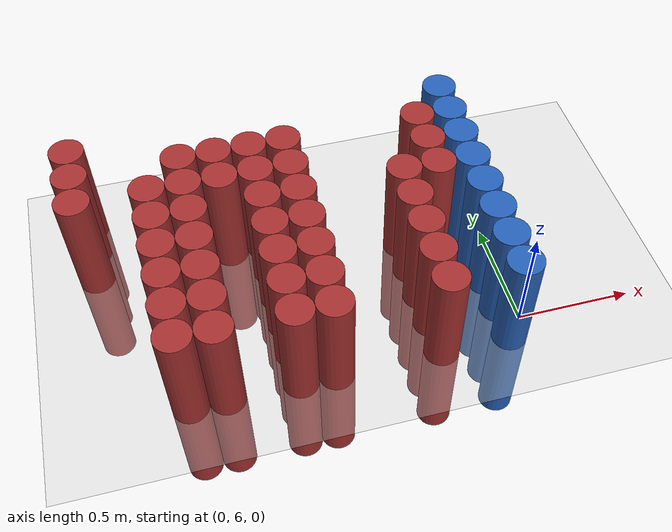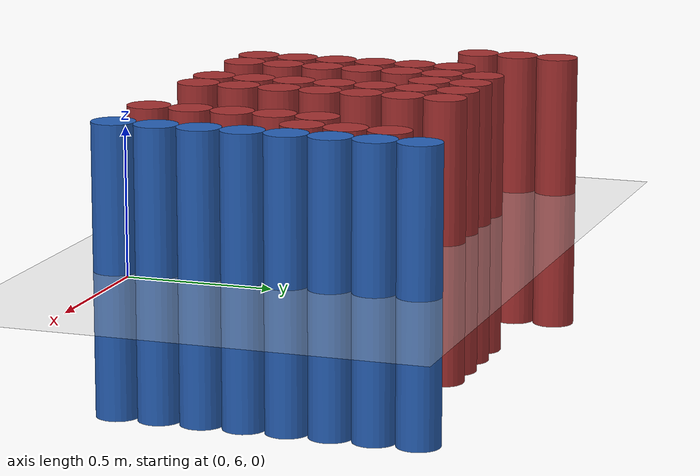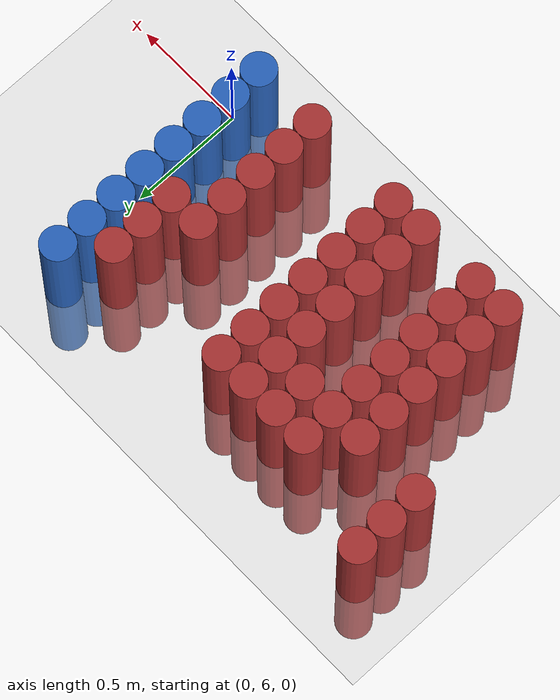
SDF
<sdf version="1.6">
 <world name="default">
  <model name="ground_plane">
   <static>1</static>
   <link name="link">
    <collision name="collision">
     <geometry><plane><normal>0 0 1</normal><size>100 100</size></plane></geometry>
     <surface><friction><ode><mu>100</mu><mu2>50</mu2></ode></friction></surface>
    </collision>
    <visual name="visual">
     <cast_shadows>0</cast_shadows>
     <geometry><plane><normal>0 0 1</normal><size>100 100</size></plane></geometry>
     <material>
      <script><uri>file://media/materials/scripts/gazebo.material</uri><name>Gazebo/Grey</name></script>
     </material>
    </visual>
   </link>
  </model>
  <model name="unit_cylinder_218">
   <static>1</static>
   <pose>-1.725000 6.675000 0.000000 0.000000 0.000000 0.000000</pose>
   <link name="link">
    <inertial>
     <mass>1</mass>
     <inertia><ixx>0.145833</ixx><ixy>0</ixy><ixz>0</ixz><iyy>0.145833</iyy><iyz>0</iyz><izz>0.125</izz></inertia>
    </inertial>
    <collision name="collision">
     <geometry><cylinder><radius>0.075000</radius><length>1</length></cylinder></geometry>
    </collision>
    <visual name="visual">
     <geometry><cylinder><radius>0.075000</radius><length>1</length></cylinder></geometry>
     <material>
      <ambient>0.648000 0.192000 0.192000 1</ambient>
      <diffuse>0.648000 0.192000 0.192000 1</diffuse>
     </material>
     <material>
      <script><name>Gazebo/Grey</name><uri>file://media/materials/scripts/gazebo.material</uri></script>
     </material>
    </visual>
   </link>
  </model>
  <model name="unit_cylinder_219">
   <static>1</static>
   <pose>-1.725000 6.825000 0.000000 0.000000 0.000000 0.000000</pose>
   <link name="link">
    <inertial>
     <mass>1</mass>
     <inertia><ixx>0.145833</ixx><ixy>0</ixy><ixz>0</ixz><iyy>0.145833</iyy><iyz>0</iyz><izz>0.125</izz></inertia>
    </inertial>
    <collision name="collision">
     <geometry><cylinder><radius>0.075000</radius><length>1</length></cylinder></geometry>
    </collision>
    <visual name="visual">
     <geometry><cylinder><radius>0.075000</radius><length>1</length></cylinder></geometry>
     <material>
      <ambient>0.648000 0.192000 0.192000 1</ambient>
      <diffuse>0.648000 0.192000 0.192000 1</diffuse>
     </material>
     <material>
      <script><name>Gazebo/Grey</name><uri>file://media/materials/scripts/gazebo.material</uri></script>
     </material>
    </visual>
   </link>
  </model>
  <model name="unit_cylinder_220">
   <static>1</static>
   <pose>-1.725000 6.975000 0.000000 0.000000 0.000000 0.000000</pose>
   <link name="link">
    <inertial>
     <mass>1</mass>
     <inertia><ixx>0.145833</ixx><ixy>0</ixy><ixz>0</ixz><iyy>0.145833</iyy><iyz>0</iyz><izz>0.125</izz></inertia>
    </inertial>
    <collision name="collision">
     <geometry><cylinder><radius>0.075000</radius><length>1</length></cylinder></geometry>
    </collision>
    <visual name="visual">
     <geometry><cylinder><radius>0.075000</radius><length>1</length></cylinder></geometry>
     <material>
      <ambient>0.648000 0.192000 0.192000 1</ambient>
      <diffuse>0.648000 0.192000 0.192000 1</diffuse>
     </material>
     <material>
      <script><name>Gazebo/Grey</name><uri>file://media/materials/scripts/gazebo.material</uri></script>
     </material>
    </visual>
   </link>
  </model>
  <model name="unit_cylinder_236">
   <static>1</static>
   <pose>-1.425000 5.925000 0.000000 0.000000 0.000000 0.000000</pose>
   <link name="link">
    <inertial>
     <mass>1</mass>
     <inertia><ixx>0.145833</ixx><ixy>0</ixy><ixz>0</ixz><iyy>0.145833</iyy><iyz>0</iyz><izz>0.125</izz></inertia>
    </inertial>
    <collision name="collision">
     <geometry><cylinder><radius>0.075000</radius><length>1</length></cylinder></geometry>
    </collision>
    <visual name="visual">
     <geometry><cylinder><radius>0.075000</radius><length>1</length></cylinder></geometry>
     <material>
      <ambient>0.648000 0.192000 0.192000 1</ambient>
      <diffuse>0.648000 0.192000 0.192000 1</diffuse>
     </material>
     <material>
      <script><name>Gazebo/Grey</name><uri>file://media/materials/scripts/gazebo.material</uri></script>
     </material>
    </visual>
   </link>
  </model>
  <model name="unit_cylinder_237">
   <static>1</static>
   <pose>-1.425000 6.075000 0.000000 0.000000 0.000000 0.000000</pose>
   <link name="link">
    <inertial>
     <mass>1</mass>
     <inertia><ixx>0.145833</ixx><ixy>0</ixy><ixz>0</ixz><iyy>0.145833</iyy><iyz>0</iyz><izz>0.125</izz></inertia>
    </inertial>
    <collision name="collision">
     <geometry><cylinder><radius>0.075000</radius><length>1</length></cylinder></geometry>
    </collision>
    <visual name="visual">
     <geometry><cylinder><radius>0.075000</radius><length>1</length></cylinder></geometry>
     <material>
      <ambient>0.648000 0.192000 0.192000 1</ambient>
      <diffuse>0.648000 0.192000 0.192000 1</diffuse>
     </material>
     <material>
      <script><name>Gazebo/Grey</name><uri>file://media/materials/scripts/gazebo.material</uri></script>
     </material>
    </visual>
   </link>
  </model>
  <model name="unit_cylinder_238">
   <static>1</static>
   <pose>-1.425000 6.225000 0.000000 0.000000 0.000000 0.000000</pose>
   <link name="link">
    <inertial>
     <mass>1</mass>
     <inertia><ixx>0.145833</ixx><ixy>0</ixy><ixz>0</ixz><iyy>0.145833</iyy><iyz>0</iyz><izz>0.125</izz></inertia>
    </inertial>
    <collision name="collision">
     <geometry><cylinder><radius>0.075000</radius><length>1</length></cylinder></geometry>
    </collision>
    <visual name="visual">
     <geometry><cylinder><radius>0.075000</radius><length>1</length></cylinder></geometry>
     <material>
      <ambient>0.648000 0.192000 0.192000 1</ambient>
      <diffuse>0.648000 0.192000 0.192000 1</diffuse>
     </material>
     <material>
      <script><name>Gazebo/Grey</name><uri>file://media/materials/scripts/gazebo.material</uri></script>
     </material>
    </visual>
   </link>
  </model>
  <model name="unit_cylinder_239">
   <static>1</static>
   <pose>-1.425000 6.375000 0.000000 0.000000 0.000000 0.000000</pose>
   <link name="link">
    <inertial>
     <mass>1</mass>
     <inertia><ixx>0.145833</ixx><ixy>0</ixy><ixz>0</ixz><iyy>0.145833</iyy><iyz>0</iyz><izz>0.125</izz></inertia>
    </inertial>
    <collision name="collision">
     <geometry><cylinder><radius>0.075000</radius><length>1</length></cylinder></geometry>
    </collision>
    <visual name="visual">
     <geometry><cylinder><radius>0.075000</radius><length>1</length></cylinder></geometry>
     <material>
      <ambient>0.648000 0.192000 0.192000 1</ambient>
      <diffuse>0.648000 0.192000 0.192000 1</diffuse>
     </material>
     <material>
      <script><name>Gazebo/Grey</name><uri>file://media/materials/scripts/gazebo.material</uri></script>
     </material>
    </visual>
   </link>
  </model>
  <model name="unit_cylinder_240">
   <static>1</static>
   <pose>-1.425000 6.525000 0.000000 0.000000 0.000000 0.000000</pose>
   <link name="link">
    <inertial>
     <mass>1</mass>
     <inertia><ixx>0.145833</ixx><ixy>0</ixy><ixz>0</ixz><iyy>0.145833</iyy><iyz>0</iyz><izz>0.125</izz></inertia>
    </inertial>
    <collision name="collision">
     <geometry><cylinder><radius>0.075000</radius><length>1</length></cylinder></geometry>
    </collision>
    <visual name="visual">
     <geometry><cylinder><radius>0.075000</radius><length>1</length></cylinder></geometry>
     <material>
      <ambient>0.648000 0.192000 0.192000 1</ambient>
      <diffuse>0.648000 0.192000 0.192000 1</diffuse>
     </material>
     <material>
      <script><name>Gazebo/Grey</name><uri>file://media/materials/scripts/gazebo.material</uri></script>
     </material>
    </visual>
   </link>
  </model>
  <model name="unit_cylinder_241">
   <static>1</static>
   <pose>-1.425000 6.675000 0.000000 0.000000 0.000000 0.000000</pose>
   <link name="link">
    <inertial>
     <mass>1</mass>
     <inertia><ixx>0.145833</ixx><ixy>0</ixy><ixz>0</ixz><iyy>0.145833</iyy><iyz>0</iyz><izz>0.125</izz></inertia>
    </inertial>
    <collision name="collision">
     <geometry><cylinder><radius>0.075000</radius><length>1</length></cylinder></geometry>
    </collision>
    <visual name="visual">
     <geometry><cylinder><radius>0.075000</radius><length>1</length></cylinder></geometry>
     <material>
      <ambient>0.648000 0.192000 0.192000 1</ambient>
      <diffuse>0.648000 0.192000 0.192000 1</diffuse>
     </material>
     <material>
      <script><name>Gazebo/Grey</name><uri>file://media/materials/scripts/gazebo.material</uri></script>
     </material>
    </visual>
   </link>
  </model>
  <model name="unit_cylinder_249">
   <static>1</static>
   <pose>-1.275000 5.925000 0.000000 0.000000 0.000000 0.000000</pose>
   <link name="link">
    <inertial>
     <mass>1</mass>
     <inertia><ixx>0.145833</ixx><ixy>0</ixy><ixz>0</ixz><iyy>0.145833</iyy><iyz>0</iyz><izz>0.125</izz></inertia>
    </inertial>
    <collision name="collision">
     <geometry><cylinder><radius>0.075000</radius><length>1</length></cylinder></geometry>
    </collision>
    <visual name="visual">
     <geometry><cylinder><radius>0.075000</radius><length>1</length></cylinder></geometry>
     <material>
      <ambient>0.648000 0.192000 0.192000 1</ambient>
      <diffuse>0.648000 0.192000 0.192000 1</diffuse>
     </material>
     <material>
      <script><name>Gazebo/Grey</name><uri>file://media/materials/scripts/gazebo.material</uri></script>
     </material>
    </visual>
   </link>
  </model>
  <model name="unit_cylinder_250">
   <static>1</static>
   <pose>-1.275000 6.075000 0.000000 0.000000 0.000000 0.000000</pose>
   <link name="link">
    <inertial>
     <mass>1</mass>
     <inertia><ixx>0.145833</ixx><ixy>0</ixy><ixz>0</ixz><iyy>0.145833</iyy><iyz>0</iyz><izz>0.125</izz></inertia>
    </inertial>
    <collision name="collision">
     <geometry><cylinder><radius>0.075000</radius><length>1</length></cylinder></geometry>
    </collision>
    <visual name="visual">
     <geometry><cylinder><radius>0.075000</radius><length>1</length></cylinder></geometry>
     <material>
      <ambient>0.648000 0.192000 0.192000 1</ambient>
      <diffuse>0.648000 0.192000 0.192000 1</diffuse>
     </material>
     <material>
      <script><name>Gazebo/Grey</name><uri>file://media/materials/scripts/gazebo.material</uri></script>
     </material>
    </visual>
   </link>
  </model>
  <model name="unit_cylinder_251">
   <static>1</static>
   <pose>-1.275000 6.225000 0.000000 0.000000 0.000000 0.000000</pose>
   <link name="link">
    <inertial>
     <mass>1</mass>
     <inertia><ixx>0.145833</ixx><ixy>0</ixy><ixz>0</ixz><iyy>0.145833</iyy><iyz>0</iyz><izz>0.125</izz></inertia>
    </inertial>
    <collision name="collision">
     <geometry><cylinder><radius>0.075000</radius><length>1</length></cylinder></geometry>
    </collision>
    <visual name="visual">
     <geometry><cylinder><radius>0.075000</radius><length>1</length></cylinder></geometry>
     <material>
      <ambient>0.648000 0.192000 0.192000 1</ambient>
      <diffuse>0.648000 0.192000 0.192000 1</diffuse>
     </material>
     <material>
      <script><name>Gazebo/Grey</name><uri>file://media/materials/scripts/gazebo.material</uri></script>
     </material>
    </visual>
   </link>
  </model>
  <model name="unit_cylinder_252">
   <static>1</static>
   <pose>-1.275000 6.375000 0.000000 0.000000 0.000000 0.000000</pose>
   <link name="link">
    <inertial>
     <mass>1</mass>
     <inertia><ixx>0.145833</ixx><ixy>0</ixy><ixz>0</ixz><iyy>0.145833</iyy><iyz>0</iyz><izz>0.125</izz></inertia>
    </inertial>
    <collision name="collision">
     <geometry><cylinder><radius>0.075000</radius><length>1</length></cylinder></geometry>
    </collision>
    <visual name="visual">
     <geometry><cylinder><radius>0.075000</radius><length>1</length></cylinder></geometry>
     <material>
      <ambient>0.648000 0.192000 0.192000 1</ambient>
      <diffuse>0.648000 0.192000 0.192000 1</diffuse>
     </material>
     <material>
      <script><name>Gazebo/Grey</name><uri>file://media/materials/scripts/gazebo.material</uri></script>
     </material>
    </visual>
   </link>
  </model>
  <model name="unit_cylinder_253">
   <static>1</static>
   <pose>-1.275000 6.525000 0.000000 0.000000 0.000000 0.000000</pose>
   <link name="link">
    <inertial>
     <mass>1</mass>
     <inertia><ixx>0.145833</ixx><ixy>0</ixy><ixz>0</ixz><iyy>0.145833</iyy><iyz>0</iyz><izz>0.125</izz></inertia>
    </inertial>
    <collision name="collision">
     <geometry><cylinder><radius>0.075000</radius><length>1</length></cylinder></geometry>
    </collision>
    <visual name="visual">
     <geometry><cylinder><radius>0.075000</radius><length>1</length></cylinder></geometry>
     <material>
      <ambient>0.648000 0.192000 0.192000 1</ambient>
      <diffuse>0.648000 0.192000 0.192000 1</diffuse>
     </material>
     <material>
      <script><name>Gazebo/Grey</name><uri>file://media/materials/scripts/gazebo.material</uri></script>
     </material>
    </visual>
   </link>
  </model>
  <model name="unit_cylinder_254">
   <static>1</static>
   <pose>-1.275000 6.675000 0.000000 0.000000 0.000000 0.000000</pose>
   <link name="link">
    <inertial>
     <mass>1</mass>
     <inertia><ixx>0.145833</ixx><ixy>0</ixy><ixz>0</ixz><iyy>0.145833</iyy><iyz>0</iyz><izz>0.125</izz></inertia>
    </inertial>
    <collision name="collision">
     <geometry><cylinder><radius>0.075000</radius><length>1</length></cylinder></geometry>
    </collision>
    <visual name="visual">
     <geometry><cylinder><radius>0.075000</radius><length>1</length></cylinder></geometry>
     <material>
      <ambient>0.648000 0.192000 0.192000 1</ambient>
      <diffuse>0.648000 0.192000 0.192000 1</diffuse>
     </material>
     <material>
      <script><name>Gazebo/Grey</name><uri>file://media/materials/scripts/gazebo.material</uri></script>
     </material>
    </visual>
   </link>
  </model>
  <model name="unit_cylinder_255">
   <static>1</static>
   <pose>-1.275000 6.825000 0.000000 0.000000 0.000000 0.000000</pose>
   <link name="link">
    <inertial>
     <mass>1</mass>
     <inertia><ixx>0.145833</ixx><ixy>0</ixy><ixz>0</ixz><iyy>0.145833</iyy><iyz>0</iyz><izz>0.125</izz></inertia>
    </inertial>
    <collision name="collision">
     <geometry><cylinder><radius>0.075000</radius><length>1</length></cylinder></geometry>
    </collision>
    <visual name="visual">
     <geometry><cylinder><radius>0.075000</radius><length>1</length></cylinder></geometry>
     <material>
      <ambient>0.648000 0.192000 0.192000 1</ambient>
      <diffuse>0.648000 0.192000 0.192000 1</diffuse>
     </material>
     <material>
      <script><name>Gazebo/Grey</name><uri>file://media/materials/scripts/gazebo.material</uri></script>
     </material>
    </visual>
   </link>
  </model>
  <model name="unit_cylinder_258">
   <static>1</static>
   <pose>-1.125000 6.675000 0.000000 0.000000 0.000000 0.000000</pose>
   <link name="link">
    <inertial>
     <mass>1</mass>
     <inertia><ixx>0.145833</ixx><ixy>0</ixy><ixz>0</ixz><iyy>0.145833</iyy><iyz>0</iyz><izz>0.125</izz></inertia>
    </inertial>
    <collision name="collision">
     <geometry><cylinder><radius>0.075000</radius><length>1</length></cylinder></geometry>
    </collision>
    <visual name="visual">
     <geometry><cylinder><radius>0.075000</radius><length>1</length></cylinder></geometry>
     <material>
      <ambient>0.648000 0.192000 0.192000 1</ambient>
      <diffuse>0.648000 0.192000 0.192000 1</diffuse>
     </material>
     <material>
      <script><name>Gazebo/Grey</name><uri>file://media/materials/scripts/gazebo.material</uri></script>
     </material>
    </visual>
   </link>
  </model>
  <model name="unit_cylinder_259">
   <static>1</static>
   <pose>-1.125000 6.825000 0.000000 0.000000 0.000000 0.000000</pose>
   <link name="link">
    <inertial>
     <mass>1</mass>
     <inertia><ixx>0.145833</ixx><ixy>0</ixy><ixz>0</ixz><iyy>0.145833</iyy><iyz>0</iyz><izz>0.125</izz></inertia>
    </inertial>
    <collision name="collision">
     <geometry><cylinder><radius>0.075000</radius><length>1</length></cylinder></geometry>
    </collision>
    <visual name="visual">
     <geometry><cylinder><radius>0.075000</radius><length>1</length></cylinder></geometry>
     <material>
      <ambient>0.648000 0.192000 0.192000 1</ambient>
      <diffuse>0.648000 0.192000 0.192000 1</diffuse>
     </material>
     <material>
      <script><name>Gazebo/Grey</name><uri>file://media/materials/scripts/gazebo.material</uri></script>
     </material>
    </visual>
   </link>
  </model>
  <model name="unit_cylinder_263">
   <static>1</static>
   <pose>-0.975000 5.925000 0.000000 0.000000 0.000000 0.000000</pose>
   <link name="link">
    <inertial>
     <mass>1</mass>
     <inertia><ixx>0.145833</ixx><ixy>0</ixy><ixz>0</ixz><iyy>0.145833</iyy><iyz>0</iyz><izz>0.125</izz></inertia>
    </inertial>
    <collision name="collision">
     <geometry><cylinder><radius>0.075000</radius><length>1</length></cylinder></geometry>
    </collision>
    <visual name="visual">
     <geometry><cylinder><radius>0.075000</radius><length>1</length></cylinder></geometry>
     <material>
      <ambient>0.648000 0.192000 0.192000 1</ambient>
      <diffuse>0.648000 0.192000 0.192000 1</diffuse>
     </material>
     <material>
      <script><name>Gazebo/Grey</name><uri>file://media/materials/scripts/gazebo.material</uri></script>
     </material>
    </visual>
   </link>
  </model>
  <model name="unit_cylinder_264">
   <static>1</static>
   <pose>-0.975000 6.075000 0.000000 0.000000 0.000000 0.000000</pose>
   <link name="link">
    <inertial>
     <mass>1</mass>
     <inertia><ixx>0.145833</ixx><ixy>0</ixy><ixz>0</ixz><iyy>0.145833</iyy><iyz>0</iyz><izz>0.125</izz></inertia>
    </inertial>
    <collision name="collision">
     <geometry><cylinder><radius>0.075000</radius><length>1</length></cylinder></geometry>
    </collision>
    <visual name="visual">
     <geometry><cylinder><radius>0.075000</radius><length>1</length></cylinder></geometry>
     <material>
      <ambient>0.648000 0.192000 0.192000 1</ambient>
      <diffuse>0.648000 0.192000 0.192000 1</diffuse>
     </material>
     <material>
      <script><name>Gazebo/Grey</name><uri>file://media/materials/scripts/gazebo.material</uri></script>
     </material>
    </visual>
   </link>
  </model>
  <model name="unit_cylinder_265">
   <static>1</static>
   <pose>-0.975000 6.225000 0.000000 0.000000 0.000000 0.000000</pose>
   <link name="link">
    <inertial>
     <mass>1</mass>
     <inertia><ixx>0.145833</ixx><ixy>0</ixy><ixz>0</ixz><iyy>0.145833</iyy><iyz>0</iyz><izz>0.125</izz></inertia>
    </inertial>
    <collision name="collision">
     <geometry><cylinder><radius>0.075000</radius><length>1</length></cylinder></geometry>
    </collision>
    <visual name="visual">
     <geometry><cylinder><radius>0.075000</radius><length>1</length></cylinder></geometry>
     <material>
      <ambient>0.648000 0.192000 0.192000 1</ambient>
      <diffuse>0.648000 0.192000 0.192000 1</diffuse>
     </material>
     <material>
      <script><name>Gazebo/Grey</name><uri>file://media/materials/scripts/gazebo.material</uri></script>
     </material>
    </visual>
   </link>
  </model>
  <model name="unit_cylinder_266">
   <static>1</static>
   <pose>-0.975000 6.375000 0.000000 0.000000 0.000000 0.000000</pose>
   <link name="link">
    <inertial>
     <mass>1</mass>
     <inertia><ixx>0.145833</ixx><ixy>0</ixy><ixz>0</ixz><iyy>0.145833</iyy><iyz>0</iyz><izz>0.125</izz></inertia>
    </inertial>
    <collision name="collision">
     <geometry><cylinder><radius>0.075000</radius><length>1</length></cylinder></geometry>
    </collision>
    <visual name="visual">
     <geometry><cylinder><radius>0.075000</radius><length>1</length></cylinder></geometry>
     <material>
      <ambient>0.648000 0.192000 0.192000 1</ambient>
      <diffuse>0.648000 0.192000 0.192000 1</diffuse>
     </material>
     <material>
      <script><name>Gazebo/Grey</name><uri>file://media/materials/scripts/gazebo.material</uri></script>
     </material>
    </visual>
   </link>
  </model>
  <model name="unit_cylinder_267">
   <static>1</static>
   <pose>-0.975000 6.525000 0.000000 0.000000 0.000000 0.000000</pose>
   <link name="link">
    <inertial>
     <mass>1</mass>
     <inertia><ixx>0.145833</ixx><ixy>0</ixy><ixz>0</ixz><iyy>0.145833</iyy><iyz>0</iyz><izz>0.125</izz></inertia>
    </inertial>
    <collision name="collision">
     <geometry><cylinder><radius>0.075000</radius><length>1</length></cylinder></geometry>
    </collision>
    <visual name="visual">
     <geometry><cylinder><radius>0.075000</radius><length>1</length></cylinder></geometry>
     <material>
      <ambient>0.648000 0.192000 0.192000 1</ambient>
      <diffuse>0.648000 0.192000 0.192000 1</diffuse>
     </material>
     <material>
      <script><name>Gazebo/Grey</name><uri>file://media/materials/scripts/gazebo.material</uri></script>
     </material>
    </visual>
   </link>
  </model>
  <model name="unit_cylinder_268">
   <static>1</static>
   <pose>-0.975000 6.675000 0.000000 0.000000 0.000000 0.000000</pose>
   <link name="link">
    <inertial>
     <mass>1</mass>
     <inertia><ixx>0.145833</ixx><ixy>0</ixy><ixz>0</ixz><iyy>0.145833</iyy><iyz>0</iyz><izz>0.125</izz></inertia>
    </inertial>
    <collision name="collision">
     <geometry><cylinder><radius>0.075000</radius><length>1</length></cylinder></geometry>
    </collision>
    <visual name="visual">
     <geometry><cylinder><radius>0.075000</radius><length>1</length></cylinder></geometry>
     <material>
      <ambient>0.648000 0.192000 0.192000 1</ambient>
      <diffuse>0.648000 0.192000 0.192000 1</diffuse>
     </material>
     <material>
      <script><name>Gazebo/Grey</name><uri>file://media/materials/scripts/gazebo.material</uri></script>
     </material>
    </visual>
   </link>
  </model>
  <model name="unit_cylinder_269">
   <static>1</static>
   <pose>-0.975000 6.825000 0.000000 0.000000 0.000000 0.000000</pose>
   <link name="link">
    <inertial>
     <mass>1</mass>
     <inertia><ixx>0.145833</ixx><ixy>0</ixy><ixz>0</ixz><iyy>0.145833</iyy><iyz>0</iyz><izz>0.125</izz></inertia>
    </inertial>
    <collision name="collision">
     <geometry><cylinder><radius>0.075000</radius><length>1</length></cylinder></geometry>
    </collision>
    <visual name="visual">
     <geometry><cylinder><radius>0.075000</radius><length>1</length></cylinder></geometry>
     <material>
      <ambient>0.648000 0.192000 0.192000 1</ambient>
      <diffuse>0.648000 0.192000 0.192000 1</diffuse>
     </material>
     <material>
      <script><name>Gazebo/Grey</name><uri>file://media/materials/scripts/gazebo.material</uri></script>
     </material>
    </visual>
   </link>
  </model>
  <model name="unit_cylinder_275">
   <static>1</static>
   <pose>-0.825000 5.925000 0.000000 0.000000 0.000000 0.000000</pose>
   <link name="link">
    <inertial>
     <mass>1</mass>
     <inertia><ixx>0.145833</ixx><ixy>0</ixy><ixz>0</ixz><iyy>0.145833</iyy><iyz>0</iyz><izz>0.125</izz></inertia>
    </inertial>
    <collision name="collision">
     <geometry><cylinder><radius>0.075000</radius><length>1</length></cylinder></geometry>
    </collision>
    <visual name="visual">
     <geometry><cylinder><radius>0.075000</radius><length>1</length></cylinder></geometry>
     <material>
      <ambient>0.648000 0.192000 0.192000 1</ambient>
      <diffuse>0.648000 0.192000 0.192000 1</diffuse>
     </material>
     <material>
      <script><name>Gazebo/Grey</name><uri>file://media/materials/scripts/gazebo.material</uri></script>
     </material>
    </visual>
   </link>
  </model>
  <model name="unit_cylinder_276">
   <static>1</static>
   <pose>-0.825000 6.075000 0.000000 0.000000 0.000000 0.000000</pose>
   <link name="link">
    <inertial>
     <mass>1</mass>
     <inertia><ixx>0.145833</ixx><ixy>0</ixy><ixz>0</ixz><iyy>0.145833</iyy><iyz>0</iyz><izz>0.125</izz></inertia>
    </inertial>
    <collision name="collision">
     <geometry><cylinder><radius>0.075000</radius><length>1</length></cylinder></geometry>
    </collision>
    <visual name="visual">
     <geometry><cylinder><radius>0.075000</radius><length>1</length></cylinder></geometry>
     <material>
      <ambient>0.648000 0.192000 0.192000 1</ambient>
      <diffuse>0.648000 0.192000 0.192000 1</diffuse>
     </material>
     <material>
      <script><name>Gazebo/Grey</name><uri>file://media/materials/scripts/gazebo.material</uri></script>
     </material>
    </visual>
   </link>
  </model>
  <model name="unit_cylinder_277">
   <static>1</static>
   <pose>-0.825000 6.225000 0.000000 0.000000 0.000000 0.000000</pose>
   <link name="link">
    <inertial>
     <mass>1</mass>
     <inertia><ixx>0.145833</ixx><ixy>0</ixy><ixz>0</ixz><iyy>0.145833</iyy><iyz>0</iyz><izz>0.125</izz></inertia>
    </inertial>
    <collision name="collision">
     <geometry><cylinder><radius>0.075000</radius><length>1</length></cylinder></geometry>
    </collision>
    <visual name="visual">
     <geometry><cylinder><radius>0.075000</radius><length>1</length></cylinder></geometry>
     <material>
      <ambient>0.648000 0.192000 0.192000 1</ambient>
      <diffuse>0.648000 0.192000 0.192000 1</diffuse>
     </material>
     <material>
      <script><name>Gazebo/Grey</name><uri>file://media/materials/scripts/gazebo.material</uri></script>
     </material>
    </visual>
   </link>
  </model>
  <model name="unit_cylinder_278">
   <static>1</static>
   <pose>-0.825000 6.375000 0.000000 0.000000 0.000000 0.000000</pose>
   <link name="link">
    <inertial>
     <mass>1</mass>
     <inertia><ixx>0.145833</ixx><ixy>0</ixy><ixz>0</ixz><iyy>0.145833</iyy><iyz>0</iyz><izz>0.125</izz></inertia>
    </inertial>
    <collision name="collision">
     <geometry><cylinder><radius>0.075000</radius><length>1</length></cylinder></geometry>
    </collision>
    <visual name="visual">
     <geometry><cylinder><radius>0.075000</radius><length>1</length></cylinder></geometry>
     <material>
      <ambient>0.648000 0.192000 0.192000 1</ambient>
      <diffuse>0.648000 0.192000 0.192000 1</diffuse>
     </material>
     <material>
      <script><name>Gazebo/Grey</name><uri>file://media/materials/scripts/gazebo.material</uri></script>
     </material>
    </visual>
   </link>
  </model>
  <model name="unit_cylinder_279">
   <static>1</static>
   <pose>-0.825000 6.525000 0.000000 0.000000 0.000000 0.000000</pose>
   <link name="link">
    <inertial>
     <mass>1</mass>
     <inertia><ixx>0.145833</ixx><ixy>0</ixy><ixz>0</ixz><iyy>0.145833</iyy><iyz>0</iyz><izz>0.125</izz></inertia>
    </inertial>
    <collision name="collision">
     <geometry><cylinder><radius>0.075000</radius><length>1</length></cylinder></geometry>
    </collision>
    <visual name="visual">
     <geometry><cylinder><radius>0.075000</radius><length>1</length></cylinder></geometry>
     <material>
      <ambient>0.648000 0.192000 0.192000 1</ambient>
      <diffuse>0.648000 0.192000 0.192000 1</diffuse>
     </material>
     <material>
      <script><name>Gazebo/Grey</name><uri>file://media/materials/scripts/gazebo.material</uri></script>
     </material>
    </visual>
   </link>
  </model>
  <model name="unit_cylinder_280">
   <static>1</static>
   <pose>-0.825000 6.675000 0.000000 0.000000 0.000000 0.000000</pose>
   <link name="link">
    <inertial>
     <mass>1</mass>
     <inertia><ixx>0.145833</ixx><ixy>0</ixy><ixz>0</ixz><iyy>0.145833</iyy><iyz>0</iyz><izz>0.125</izz></inertia>
    </inertial>
    <collision name="collision">
     <geometry><cylinder><radius>0.075000</radius><length>1</length></cylinder></geometry>
    </collision>
    <visual name="visual">
     <geometry><cylinder><radius>0.075000</radius><length>1</length></cylinder></geometry>
     <material>
      <ambient>0.648000 0.192000 0.192000 1</ambient>
      <diffuse>0.648000 0.192000 0.192000 1</diffuse>
     </material>
     <material>
      <script><name>Gazebo/Grey</name><uri>file://media/materials/scripts/gazebo.material</uri></script>
     </material>
    </visual>
   </link>
  </model>
  <model name="unit_cylinder_281">
   <static>1</static>
   <pose>-0.825000 6.825000 0.000000 0.000000 0.000000 0.000000</pose>
   <link name="link">
    <inertial>
     <mass>1</mass>
     <inertia><ixx>0.145833</ixx><ixy>0</ixy><ixz>0</ixz><iyy>0.145833</iyy><iyz>0</iyz><izz>0.125</izz></inertia>
    </inertial>
    <collision name="collision">
     <geometry><cylinder><radius>0.075000</radius><length>1</length></cylinder></geometry>
    </collision>
    <visual name="visual">
     <geometry><cylinder><radius>0.075000</radius><length>1</length></cylinder></geometry>
     <material>
      <ambient>0.648000 0.192000 0.192000 1</ambient>
      <diffuse>0.648000 0.192000 0.192000 1</diffuse>
     </material>
     <material>
      <script><name>Gazebo/Grey</name><uri>file://media/materials/scripts/gazebo.material</uri></script>
     </material>
    </visual>
   </link>
  </model>
  <model name="unit_cylinder_295">
   <static>1</static>
   <pose>-0.375000 5.925000 0.000000 0.000000 0.000000 0.000000</pose>
   <link name="link">
    <inertial>
     <mass>1</mass>
     <inertia><ixx>0.145833</ixx><ixy>0</ixy><ixz>0</ixz><iyy>0.145833</iyy><iyz>0</iyz><izz>0.125</izz></inertia>
    </inertial>
    <collision name="collision">
     <geometry><cylinder><radius>0.075000</radius><length>1</length></cylinder></geometry>
    </collision>
    <visual name="visual">
     <geometry><cylinder><radius>0.075000</radius><length>1</length></cylinder></geometry>
     <material>
      <ambient>0.648000 0.192000 0.192000 1</ambient>
      <diffuse>0.648000 0.192000 0.192000 1</diffuse>
     </material>
     <material>
      <script><name>Gazebo/Grey</name><uri>file://media/materials/scripts/gazebo.material</uri></script>
     </material>
    </visual>
   </link>
  </model>
  <model name="unit_cylinder_296">
   <static>1</static>
   <pose>-0.375000 6.075000 0.000000 0.000000 0.000000 0.000000</pose>
   <link name="link">
    <inertial>
     <mass>1</mass>
     <inertia><ixx>0.145833</ixx><ixy>0</ixy><ixz>0</ixz><iyy>0.145833</iyy><iyz>0</iyz><izz>0.125</izz></inertia>
    </inertial>
    <collision name="collision">
     <geometry><cylinder><radius>0.075000</radius><length>1</length></cylinder></geometry>
    </collision>
    <visual name="visual">
     <geometry><cylinder><radius>0.075000</radius><length>1</length></cylinder></geometry>
     <material>
      <ambient>0.648000 0.192000 0.192000 1</ambient>
      <diffuse>0.648000 0.192000 0.192000 1</diffuse>
     </material>
     <material>
      <script><name>Gazebo/Grey</name><uri>file://media/materials/scripts/gazebo.material</uri></script>
     </material>
    </visual>
   </link>
  </model>
  <model name="unit_cylinder_297">
   <static>1</static>
   <pose>-0.375000 6.225000 0.000000 0.000000 0.000000 0.000000</pose>
   <link name="link">
    <inertial>
     <mass>1</mass>
     <inertia><ixx>0.145833</ixx><ixy>0</ixy><ixz>0</ixz><iyy>0.145833</iyy><iyz>0</iyz><izz>0.125</izz></inertia>
    </inertial>
    <collision name="collision">
     <geometry><cylinder><radius>0.075000</radius><length>1</length></cylinder></geometry>
    </collision>
    <visual name="visual">
     <geometry><cylinder><radius>0.075000</radius><length>1</length></cylinder></geometry>
     <material>
      <ambient>0.648000 0.192000 0.192000 1</ambient>
      <diffuse>0.648000 0.192000 0.192000 1</diffuse>
     </material>
     <material>
      <script><name>Gazebo/Grey</name><uri>file://media/materials/scripts/gazebo.material</uri></script>
     </material>
    </visual>
   </link>
  </model>
  <model name="unit_cylinder_298">
   <static>1</static>
   <pose>-0.375000 6.375000 0.000000 0.000000 0.000000 0.000000</pose>
   <link name="link">
    <inertial>
     <mass>1</mass>
     <inertia><ixx>0.145833</ixx><ixy>0</ixy><ixz>0</ixz><iyy>0.145833</iyy><iyz>0</iyz><izz>0.125</izz></inertia>
    </inertial>
    <collision name="collision">
     <geometry><cylinder><radius>0.075000</radius><length>1</length></cylinder></geometry>
    </collision>
    <visual name="visual">
     <geometry><cylinder><radius>0.075000</radius><length>1</length></cylinder></geometry>
     <material>
      <ambient>0.648000 0.192000 0.192000 1</ambient>
      <diffuse>0.648000 0.192000 0.192000 1</diffuse>
     </material>
     <material>
      <script><name>Gazebo/Grey</name><uri>file://media/materials/scripts/gazebo.material</uri></script>
     </material>
    </visual>
   </link>
  </model>
  <model name="unit_cylinder_299">
   <static>1</static>
   <pose>-0.375000 6.525000 0.000000 0.000000 0.000000 0.000000</pose>
   <link name="link">
    <inertial>
     <mass>1</mass>
     <inertia><ixx>0.145833</ixx><ixy>0</ixy><ixz>0</ixz><iyy>0.145833</iyy><iyz>0</iyz><izz>0.125</izz></inertia>
    </inertial>
    <collision name="collision">
     <geometry><cylinder><radius>0.075000</radius><length>1</length></cylinder></geometry>
    </collision>
    <visual name="visual">
     <geometry><cylinder><radius>0.075000</radius><length>1</length></cylinder></geometry>
     <material>
      <ambient>0.648000 0.192000 0.192000 1</ambient>
      <diffuse>0.648000 0.192000 0.192000 1</diffuse>
     </material>
     <material>
      <script><name>Gazebo/Grey</name><uri>file://media/materials/scripts/gazebo.material</uri></script>
     </material>
    </visual>
   </link>
  </model>
  <model name="unit_cylinder_303">
   <static>1</static>
   <pose>-0.225000 6.525000 0.000000 0.000000 0.000000 0.000000</pose>
   <link name="link">
    <inertial>
     <mass>1</mass>
     <inertia><ixx>0.145833</ixx><ixy>0</ixy><ixz>0</ixz><iyy>0.145833</iyy><iyz>0</iyz><izz>0.125</izz></inertia>
    </inertial>
    <collision name="collision">
     <geometry><cylinder><radius>0.075000</radius><length>1</length></cylinder></geometry>
    </collision>
    <visual name="visual">
     <geometry><cylinder><radius>0.075000</radius><length>1</length></cylinder></geometry>
     <material>
      <ambient>0.648000 0.192000 0.192000 1</ambient>
      <diffuse>0.648000 0.192000 0.192000 1</diffuse>
     </material>
     <material>
      <script><name>Gazebo/Grey</name><uri>file://media/materials/scripts/gazebo.material</uri></script>
     </material>
    </visual>
   </link>
  </model>
  <model name="unit_cylinder_304">
   <static>1</static>
   <pose>-0.225000 6.675000 0.000000 0.000000 0.000000 0.000000</pose>
   <link name="link">
    <inertial>
     <mass>1</mass>
     <inertia><ixx>0.145833</ixx><ixy>0</ixy><ixz>0</ixz><iyy>0.145833</iyy><iyz>0</iyz><izz>0.125</izz></inertia>
    </inertial>
    <collision name="collision">
     <geometry><cylinder><radius>0.075000</radius><length>1</length></cylinder></geometry>
    </collision>
    <visual name="visual">
     <geometry><cylinder><radius>0.075000</radius><length>1</length></cylinder></geometry>
     <material>
      <ambient>0.648000 0.192000 0.192000 1</ambient>
      <diffuse>0.648000 0.192000 0.192000 1</diffuse>
     </material>
     <material>
      <script><name>Gazebo/Grey</name><uri>file://media/materials/scripts/gazebo.material</uri></script>
     </material>
    </visual>
   </link>
  </model>
  <model name="unit_cylinder_305">
   <static>1</static>
   <pose>-0.225000 6.825000 0.000000 0.000000 0.000000 0.000000</pose>
   <link name="link">
    <inertial>
     <mass>1</mass>
     <inertia><ixx>0.145833</ixx><ixy>0</ixy><ixz>0</ixz><iyy>0.145833</iyy><iyz>0</iyz><izz>0.125</izz></inertia>
    </inertial>
    <collision name="collision">
     <geometry><cylinder><radius>0.075000</radius><length>1</length></cylinder></geometry>
    </collision>
    <visual name="visual">
     <geometry><cylinder><radius>0.075000</radius><length>1</length></cylinder></geometry>
     <material>
      <ambient>0.648000 0.192000 0.192000 1</ambient>
      <diffuse>0.648000 0.192000 0.192000 1</diffuse>
     </material>
     <material>
      <script><name>Gazebo/Grey</name><uri>file://media/materials/scripts/gazebo.material</uri></script>
     </material>
    </visual>
   </link>
  </model>
  <model name="unit_cylinder_313">
   <static>1</static>
   <pose>-0.075000 5.925000 0.000000 0.000000 0.000000 0.000000</pose>
   <link name="link">
    <inertial>
     <mass>1</mass>
     <inertia><ixx>0.145833</ixx><ixy>0</ixy><ixz>0</ixz><iyy>0.145833</iyy><iyz>0</iyz><izz>0.125</izz></inertia>
    </inertial>
    <collision name="collision">
     <geometry><cylinder><radius>0.075000</radius><length>1</length></cylinder></geometry>
    </collision>
    <visual name="visual">
     <geometry><cylinder><radius>0.075000</radius><length>1</length></cylinder></geometry>
     <material>
      <ambient>0.152000 0.379000 0.720000 1</ambient>
      <diffuse>0.152000 0.379000 0.720000 1</diffuse>
     </material>
     <material>
      <script><name>Gazebo/Grey</name><uri>file://media/materials/scripts/gazebo.material</uri></script>
     </material>
    </visual>
   </link>
  </model>
  <model name="unit_cylinder_314">
   <static>1</static>
   <pose>-0.075000 6.075000 0.000000 0.000000 0.000000 0.000000</pose>
   <link name="link">
    <inertial>
     <mass>1</mass>
     <inertia><ixx>0.145833</ixx><ixy>0</ixy><ixz>0</ixz><iyy>0.145833</iyy><iyz>0</iyz><izz>0.125</izz></inertia>
    </inertial>
    <collision name="collision">
     <geometry><cylinder><radius>0.075000</radius><length>1</length></cylinder></geometry>
    </collision>
    <visual name="visual">
     <geometry><cylinder><radius>0.075000</radius><length>1</length></cylinder></geometry>
     <material>
      <ambient>0.152000 0.379000 0.720000 1</ambient>
      <diffuse>0.152000 0.379000 0.720000 1</diffuse>
     </material>
     <material>
      <script><name>Gazebo/Grey</name><uri>file://media/materials/scripts/gazebo.material</uri></script>
     </material>
    </visual>
   </link>
  </model>
  <model name="unit_cylinder_315">
   <static>1</static>
   <pose>-0.075000 6.225000 0.000000 0.000000 0.000000 0.000000</pose>
   <link name="link">
    <inertial>
     <mass>1</mass>
     <inertia><ixx>0.145833</ixx><ixy>0</ixy><ixz>0</ixz><iyy>0.145833</iyy><iyz>0</iyz><izz>0.125</izz></inertia>
    </inertial>
    <collision name="collision">
     <geometry><cylinder><radius>0.075000</radius><length>1</length></cylinder></geometry>
    </collision>
    <visual name="visual">
     <geometry><cylinder><radius>0.075000</radius><length>1</length></cylinder></geometry>
     <material>
      <ambient>0.152000 0.379000 0.720000 1</ambient>
      <diffuse>0.152000 0.379000 0.720000 1</diffuse>
     </material>
     <material>
      <script><name>Gazebo/Grey</name><uri>file://media/materials/scripts/gazebo.material</uri></script>
     </material>
    </visual>
   </link>
  </model>
  <model name="unit_cylinder_316">
   <static>1</static>
   <pose>-0.075000 6.375000 0.000000 0.000000 0.000000 0.000000</pose>
   <link name="link">
    <inertial>
     <mass>1</mass>
     <inertia><ixx>0.145833</ixx><ixy>0</ixy><ixz>0</ixz><iyy>0.145833</iyy><iyz>0</iyz><izz>0.125</izz></inertia>
    </inertial>
    <collision name="collision">
     <geometry><cylinder><radius>0.075000</radius><length>1</length></cylinder></geometry>
    </collision>
    <visual name="visual">
     <geometry><cylinder><radius>0.075000</radius><length>1</length></cylinder></geometry>
     <material>
      <ambient>0.152000 0.379000 0.720000 1</ambient>
      <diffuse>0.152000 0.379000 0.720000 1</diffuse>
     </material>
     <material>
      <script><name>Gazebo/Grey</name><uri>file://media/materials/scripts/gazebo.material</uri></script>
     </material>
    </visual>
   </link>
  </model>
  <model name="unit_cylinder_317">
   <static>1</static>
   <pose>-0.075000 6.525000 0.000000 0.000000 0.000000 0.000000</pose>
   <link name="link">
    <inertial>
     <mass>1</mass>
     <inertia><ixx>0.145833</ixx><ixy>0</ixy><ixz>0</ixz><iyy>0.145833</iyy><iyz>0</iyz><izz>0.125</izz></inertia>
    </inertial>
    <collision name="collision">
     <geometry><cylinder><radius>0.075000</radius><length>1</length></cylinder></geometry>
    </collision>
    <visual name="visual">
     <geometry><cylinder><radius>0.075000</radius><length>1</length></cylinder></geometry>
     <material>
      <ambient>0.152000 0.379000 0.720000 1</ambient>
      <diffuse>0.152000 0.379000 0.720000 1</diffuse>
     </material>
     <material>
      <script><name>Gazebo/Grey</name><uri>file://media/materials/scripts/gazebo.material</uri></script>
     </material>
    </visual>
   </link>
  </model>
  <model name="unit_cylinder_318">
   <static>1</static>
   <pose>-0.075000 6.675000 0.000000 0.000000 0.000000 0.000000</pose>
   <link name="link">
    <inertial>
     <mass>1</mass>
     <inertia><ixx>0.145833</ixx><ixy>0</ixy><ixz>0</ixz><iyy>0.145833</iyy><iyz>0</iyz><izz>0.125</izz></inertia>
    </inertial>
    <collision name="collision">
     <geometry><cylinder><radius>0.075000</radius><length>1</length></cylinder></geometry>
    </collision>
    <visual name="visual">
     <geometry><cylinder><radius>0.075000</radius><length>1</length></cylinder></geometry>
     <material>
      <ambient>0.152000 0.379000 0.720000 1</ambient>
      <diffuse>0.152000 0.379000 0.720000 1</diffuse>
     </material>
     <material>
      <script><name>Gazebo/Grey</name><uri>file://media/materials/scripts/gazebo.material</uri></script>
     </material>
    </visual>
   </link>
  </model>
  <model name="unit_cylinder_319">
   <static>1</static>
   <pose>-0.075000 6.825000 0.000000 0.000000 0.000000 0.000000</pose>
   <link name="link">
    <inertial>
     <mass>1</mass>
     <inertia><ixx>0.145833</ixx><ixy>0</ixy><ixz>0</ixz><iyy>0.145833</iyy><iyz>0</iyz><izz>0.125</izz></inertia>
    </inertial>
    <collision name="collision">
     <geometry><cylinder><radius>0.075000</radius><length>1</length></cylinder></geometry>
    </collision>
    <visual name="visual">
     <geometry><cylinder><radius>0.075000</radius><length>1</length></cylinder></geometry>
     <material>
      <ambient>0.152000 0.379000 0.720000 1</ambient>
      <diffuse>0.152000 0.379000 0.720000 1</diffuse>
     </material>
     <material>
      <script><name>Gazebo/Grey</name><uri>file://media/materials/scripts/gazebo.material</uri></script>
     </material>
    </visual>
   </link>
  </model>
  <model name="unit_cylinder_320">
   <static>1</static>
   <pose>-0.075000 6.975000 0.000000 0.000000 0.000000 0.000000</pose>
   <link name="link">
    <inertial>
     <mass>1</mass>
     <inertia><ixx>0.145833</ixx><ixy>0</ixy><ixz>0</ixz><iyy>0.145833</iyy><iyz>0</iyz><izz>0.125</izz></inertia>
    </inertial>
    <collision name="collision">
     <geometry><cylinder><radius>0.075000</radius><length>1</length></cylinder></geometry>
    </collision>
    <visual name="visual">
     <geometry><cylinder><radius>0.075000</radius><length>1</length></cylinder></geometry>
     <material>
      <ambient>0.152000 0.379000 0.720000 1</ambient>
      <diffuse>0.152000 0.379000 0.720000 1</diffuse>
     </material>
     <material>
      <script><name>Gazebo/Grey</name><uri>file://media/materials/scripts/gazebo.material</uri></script>
     </material>
    </visual>
   </link>
  </model>
 </world>
</sdf>
